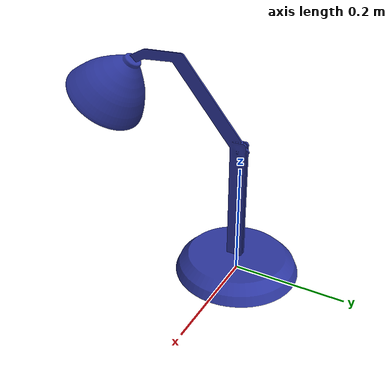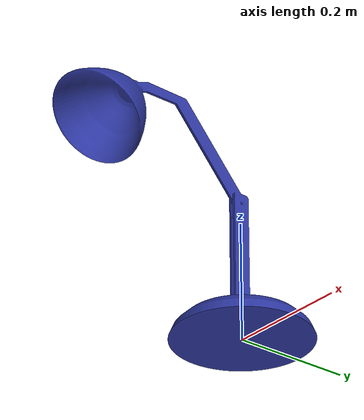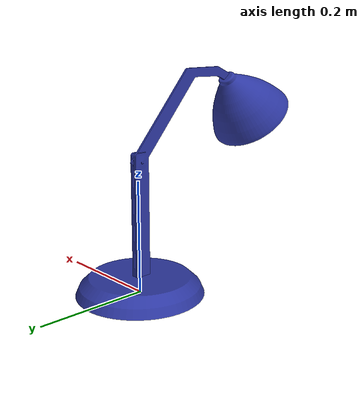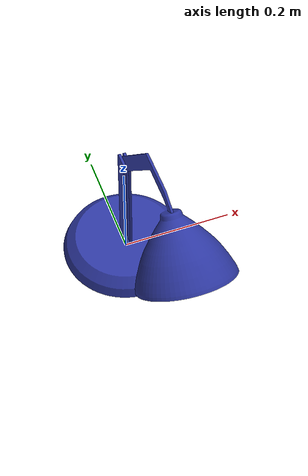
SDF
<?xml version="1.0" ?>
<sdf version="1.5">
  <model name="lap_desk">
    <link name="link">
      <pose>0 0 0 0 0 0</pose>
      <collision name="collision">
        <geometry>
          <mesh>
            <uri>model://lap_desk/meshes/model.dae</uri>
          </mesh>
        </geometry>
      </collision>
      <visual name="visual">
        <geometry>
          <mesh>
            <uri>model://lap_desk/meshes/model.dae</uri>
          </mesh>
        </geometry>
      </visual>
    </link>
    <static>1</static>
  </model>
</sdf>
